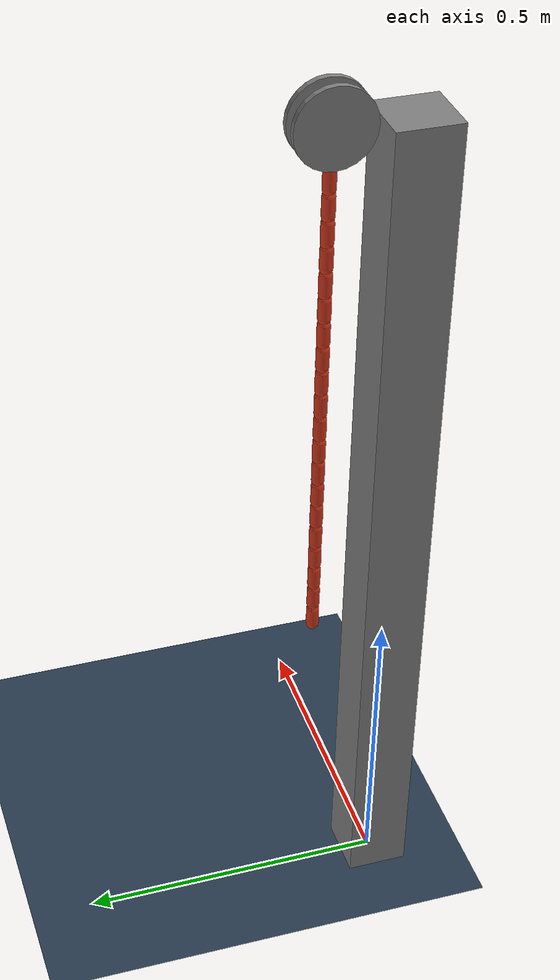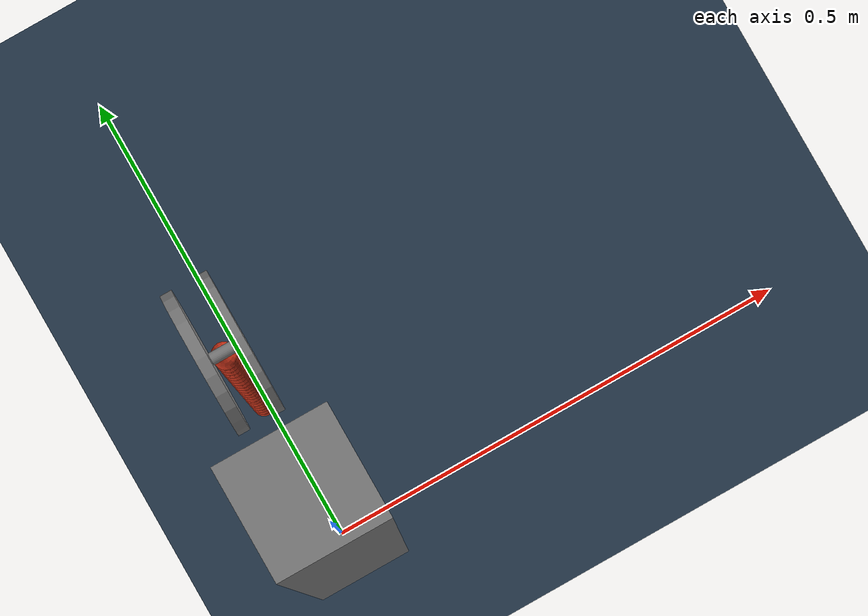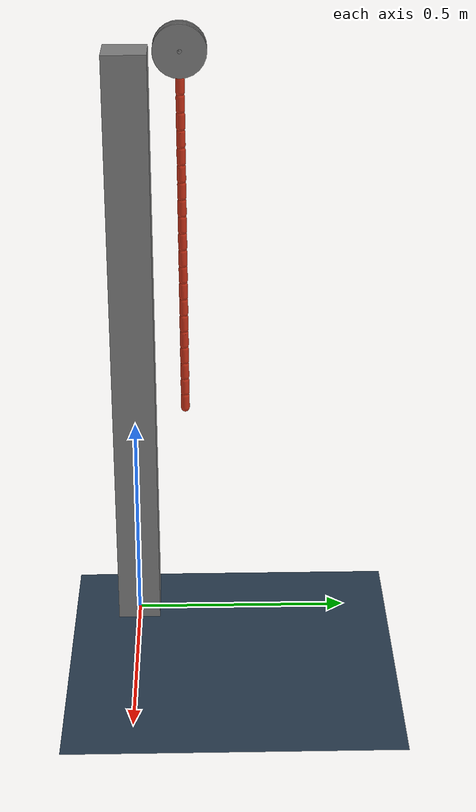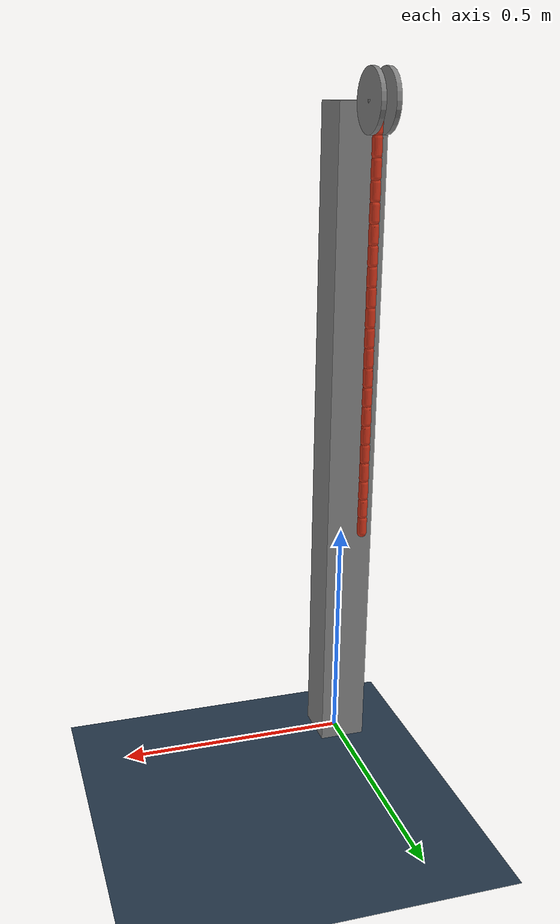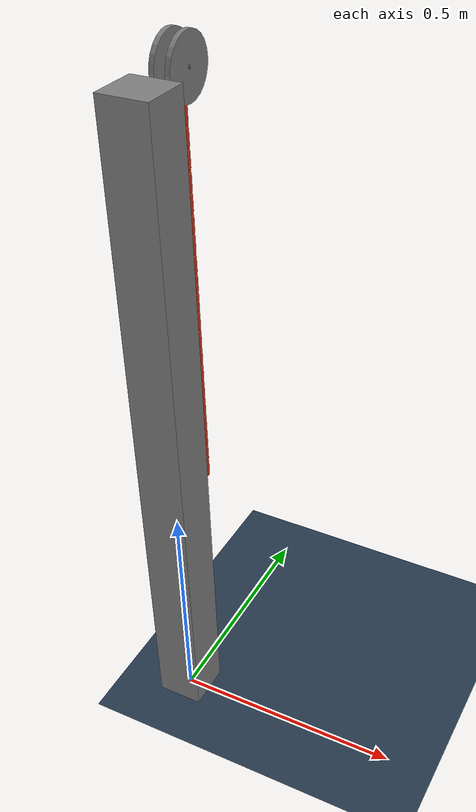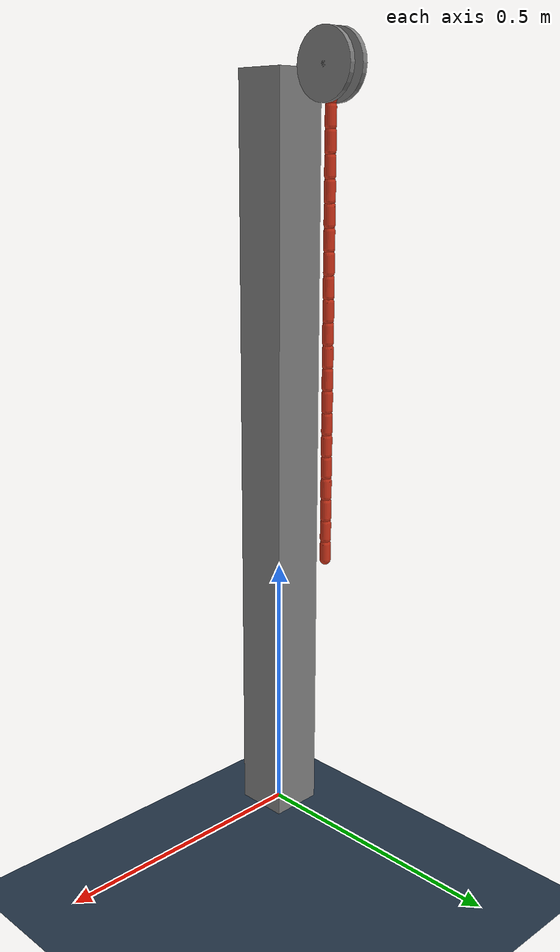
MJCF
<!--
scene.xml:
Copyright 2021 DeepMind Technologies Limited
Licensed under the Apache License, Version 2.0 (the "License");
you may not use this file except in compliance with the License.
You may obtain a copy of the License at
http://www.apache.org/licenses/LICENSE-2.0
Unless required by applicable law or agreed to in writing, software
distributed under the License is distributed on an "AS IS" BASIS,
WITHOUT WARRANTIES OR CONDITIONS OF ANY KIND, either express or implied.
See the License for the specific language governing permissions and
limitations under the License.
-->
<?xml version="1.0" encoding="UTF-8"?>

<mujoco model="d2w_cables">
    <include file="scene.xml"/>

    <option timestep="0.001" jacobian="dense"/>
    <option>
        <flag sensornoise="enable" />
    </option>

    <size nconmax="300" njmax="10000" nstack="500000"/>

    <asset>
        <texture type="skybox" builtin="gradient" rgb1=".3 .5 .7" rgb2="0 0 0" width="512" height="512"/>
        <texture name="body" type="cube" builtin="flat" mark="cross" width="127" height="1278"
                rgb1="0.8 0.6 0.4" rgb2="0.8 0.6 0.4" markrgb="1 1 1" random="0.01"/>
        <material name="body" texture="body" texuniform="true" rgba="0.8 0.6 .4 1"/>
        <texture name="grid" type="2d" builtin="checker" width="512" height="512" rgb1=".1 .2 .3" rgb2=".2 .3 .4"/>
        <material name="grid" texture="grid" texrepeat="1 1" texuniform="true" reflectance=".2"/>
    </asset>

    <default>
        <motor ctrlrange="-1 1" ctrllimited="true"/>
        <default class="body">
        <geom type="capsule" condim="1" friction=".7" solimp=".9 .99 .003" solref=".015 1" material="body"/>
        <joint type="hinge" damping=".2" stiffness="1" armature=".01" limited="true" solimplimit="0 .99 .01"/>
        <default class="big_joint">
            <joint damping="5" stiffness="10"/>
            <default class="big_stiff_joint">
            <joint stiffness="20"/>
            </default>
        </default>
        </default>
    </default>

    <visual>
        <map force="0.1" zfar="30"/>
        <rgba haze="0.15 0.25 0.4 1"/>
        <quality shadowsize="4096"/>
        <global offwidth="800" offheight="800"/>
    </visual>

    <worldbody>
        <!-- Last code Full body -->
        <body name="mastil_0"  euler="0 90 0" pos="0 0 0.7">
            <geom type="box" mass="1000" pos="0 0 0" size="0.7 0.05 0.05"/>
            <body name="b_winch_0" pos="-0.7 0.12 0">
                <joint type="hinge" axis="0 0 1" name="winch_0" range="-1.5708 1.5708"/>
                <geom type="cylinder" solimp=".9 .99 .003" priority="2" condim="6" fromto="0 0 -0.01 0 0 0.02" size="0.005"/>
                <geom type="cylinder" euler= "90 90 0" priority="2" condim="6" fromto="0 0 -0.01 0 0 -0.02" size="0.06"/>
                <geom type="cylinder" euler= "90 90 0" priority="2" condim="6" fromto="0 0 0.01 0 0 0.02" size="0.06"/>
                    <body name="B9" pos="0.04 0 0">
                        <inertial pos="0 0 0" quat="0.707107 0 0.707107 0" mass="0.0125664" diaginertia="1.98968e-06 1.98968e-06 6.28319e-07" />
                        <joint name="J0_9" pos="-0.02 0 0" axis="0 1 0" group="3" damping="0.005" />
                        <joint name="J1_9" pos="-0.02 0 0" axis="0 0 1" group="3" damping="0.005" />
                        <geom name="G9" size="0.01 0.015" quat="0.707107 0 0.707107 0" type="capsule" rgba="0.8 0.2 0.1 1" />
                        <body name="B8" pos="0.04 0 0">
                            <inertial pos="0 0 0" quat="0.707107 0 0.707107 0" mass="0.0125664" diaginertia="1.98968e-06 1.98968e-06 6.28319e-07" />
                            <joint name="J0_8" pos="-0.02 0 0" axis="0 1 0" group="3" damping="0.005" />
                            <joint name="J1_8" pos="-0.02 0 0" axis="0 0 1" group="3" damping="0.005" />
                            <geom name="G8" size="0.01 0.015" quat="0.707107 0 0.707107 0" type="capsule" rgba="0.8 0.2 0.1 1" />
                            <body name="B7" pos="0.04 0 0">
                                <inertial pos="0 0 0" quat="0.707107 0 0.707107 0" mass="0.0125664" diaginertia="1.98968e-06 1.98968e-06 6.28319e-07" />
                                <joint name="J0_7" pos="-0.02 0 0" axis="0 1 0" group="3" damping="0.005" />
                                <joint name="J1_7" pos="-0.02 0 0" axis="0 0 1" group="3" damping="0.005" />
                                <geom name="G7" size="0.01 0.015" quat="0.707107 0 0.707107 0" type="capsule" rgba="0.8 0.2 0.1 1" />
                                <body name="B6" pos="0.04 0 0">
                                    <inertial pos="0 0 0" quat="0.707107 0 0.707107 0" mass="0.0125664" diaginertia="1.98968e-06 1.98968e-06 6.28319e-07" />
                                    <joint name="J0_6" pos="-0.02 0 0" axis="0 1 0" group="3" damping="0.005" />
                                    <joint name="J1_6" pos="-0.02 0 0" axis="0 0 1" group="3" damping="0.005" />
                                    <geom name="G6" size="0.01 0.015" quat="0.707107 0 0.707107 0" type="capsule" rgba="0.8 0.2 0.1 1" />
                                    <body name="B5" pos="0.04 0 0">
                                        <inertial pos="0 0 0" quat="0.707107 0 0.707107 0" mass="0.0125664" diaginertia="1.98968e-06 1.98968e-06 6.28319e-07" />
                                        <joint name="J0_5" pos="-0.02 0 0" axis="0 1 0" group="3" damping="0.005" />
                                        <joint name="J1_5" pos="-0.02 0 0" axis="0 0 1" group="3" damping="0.005" />
                                        <geom name="G5" size="0.01 0.015" quat="0.707107 0 0.707107 0" type="capsule" rgba="0.8 0.2 0.1 1" />
                                        <body name="B4" pos="0.04 0 0">
                                            <inertial pos="0 0 0" quat="0.707107 0 0.707107 0" mass="0.0125664" diaginertia="1.98968e-06 1.98968e-06 6.28319e-07" />
                                            <joint name="J0_4" pos="-0.02 0 0" axis="0 1 0" group="3" damping="0.005" />
                                            <joint name="J1_4" pos="-0.02 0 0" axis="0 0 1" group="3" damping="0.005" />
                                            <geom name="G4" size="0.01 0.015" quat="0.707107 0 0.707107 0" type="capsule" rgba="0.8 0.2 0.1 1" />
                                            <body name="B3" pos="0.04 0 0">
                                                <inertial pos="0 0 0" quat="0.707107 0 0.707107 0" mass="0.0125664" diaginertia="1.98968e-06 1.98968e-06 6.28319e-07" />
                                                <joint name="J0_3" pos="-0.02 0 0" axis="0 1 0" group="3" damping="0.005" />
                                                <joint name="J1_3" pos="-0.02 0 0" axis="0 0 1" group="3" damping="0.005" />
                                                <geom name="G3" size="0.01 0.015" quat="0.707107 0 0.707107 0" type="capsule" rgba="0.8 0.2 0.1 1" />
                                                <body name="B2" pos="0.04 0 0">
                                                    <inertial pos="0 0 0" quat="0.707107 0 0.707107 0" mass="0.0125664" diaginertia="1.98968e-06 1.98968e-06 6.28319e-07" />
                                                    <joint name="J0_2" pos="-0.02 0 0" axis="0 1 0" group="3" damping="0.005" />
                                                    <joint name="J1_2" pos="-0.02 0 0" axis="0 0 1" group="3" damping="0.005" />
                                                    <geom name="G2" size="0.01 0.015" quat="0.707107 0 0.707107 0" type="capsule" rgba="0.8 0.2 0.1 1" />
                                                    <body name="B1" pos="0.04 0 0">
                                                        <inertial pos="0 0 0" quat="0.707107 0 0.707107 0" mass="0.0125664" diaginertia="1.98968e-06 1.98968e-06 6.28319e-07" />
                                                        <joint name="J0_1" pos="-0.02 0 0" axis="0 1 0" group="3" damping="0.005" />
                                                        <joint name="J1_1" pos="-0.02 0 0" axis="0 0 1" group="3" damping="0.005" />
                                                        <geom name="G1" size="0.01 0.015" quat="0.707107 0 0.707107 0" type="capsule" rgba="0.8 0.2 0.1 1" />
                                                        <body name="B0" pos="0.04 0 0">
                                                            <inertial pos="0 0 0" quat="0.707107 0 0.707107 0" mass="0.0125664" diaginertia="1.98968e-06 1.98968e-06 6.28319e-07" />
                                                            <joint name="J0_0" pos="-0.02 0 0" axis="0 1 0" group="3" damping="0.005" />
                                                            <joint name="J1_0" pos="-0.02 0 0" axis="0 0 1" group="3" damping="0.005" />
                                                            <geom name="G0" size="0.01 0.015" quat="0.707107 0 0.707107 0" type="capsule" rgba="0.8 0.2 0.1 1" />
                                                            <body name="B10" pos="0.04 0 0">
                                                                <inertial pos="0 0 0" quat="0.707107 0 0.707107 0" mass="0.0125664" diaginertia="1.98968e-06 1.98968e-06 6.28319e-07" />
                                                                <geom name="G10" size="0.01 0.015" quat="0.707107 0 0.707107 0" type="capsule" rgba="0.8 0.2 0.1 1" />
                                                                <body name="B11" pos="0.04 0 0">
                                                                    <inertial pos="0 0 0" quat="0.707107 0 0.707107 0" mass="0.0125664" diaginertia="1.98968e-06 1.98968e-06 6.28319e-07" />
                                                                    <joint name="J0_11" pos="-0.02 0 0" axis="0 1 0" group="3" damping="0.005" />
                                                                    <joint name="J1_11" pos="-0.02 0 0" axis="0 0 1" group="3" damping="0.005" />
                                                                    <geom name="G11" size="0.01 0.015" quat="0.707107 0 0.707107 0" type="capsule" rgba="0.8 0.2 0.1 1" />
                                                                    <body name="B12" pos="0.04 0 0">
                                                                        <inertial pos="0 0 0" quat="0.707107 0 0.707107 0" mass="0.0125664" diaginertia="1.98968e-06 1.98968e-06 6.28319e-07" />
                                                                        <joint name="J0_12" pos="-0.02 0 0" axis="0 1 0" group="3" damping="0.005" />
                                                                        <joint name="J1_12" pos="-0.02 0 0" axis="0 0 1" group="3" damping="0.005" />
                                                                        <geom name="G12" size="0.01 0.015" quat="0.707107 0 0.707107 0" type="capsule" rgba="0.8 0.2 0.1 1" />
                                                                        <body name="B13" pos="0.04 0 0">
                                                                            <inertial pos="0 0 0" quat="0.707107 0 0.707107 0" mass="0.0125664" diaginertia="1.98968e-06 1.98968e-06 6.28319e-07" />
                                                                            <joint name="J0_13" pos="-0.02 0 0" axis="0 1 0" group="3" damping="0.005" />
                                                                            <joint name="J1_13" pos="-0.02 0 0" axis="0 0 1" group="3" damping="0.005" />
                                                                            <geom name="G13" size="0.01 0.015" quat="0.707107 0 0.707107 0" type="capsule" rgba="0.8 0.2 0.1 1" />
                                                                            <body name="B14" pos="0.04 0 0">
                                                                                <inertial pos="0 0 0" quat="0.707107 0 0.707107 0" mass="0.0125664" diaginertia="1.98968e-06 1.98968e-06 6.28319e-07" />
                                                                                <joint name="J0_14" pos="-0.02 0 0" axis="0 1 0" group="3" damping="0.005" />
                                                                                <joint name="J1_14" pos="-0.02 0 0" axis="0 0 1" group="3" damping="0.005" />
                                                                                <geom name="G14" size="0.01 0.015" quat="0.707107 0 0.707107 0" type="capsule" rgba="0.8 0.2 0.1 1" />
                                                                                <body name="B15" pos="0.04 0 0">
                                                                                    <inertial pos="0 0 0" quat="0.707107 0 0.707107 0" mass="0.0125664" diaginertia="1.98968e-06 1.98968e-06 6.28319e-07" />
                                                                                    <joint name="J0_15" pos="-0.02 0 0" axis="0 1 0" group="3" damping="0.005" />
                                                                                    <joint name="J1_15" pos="-0.02 0 0" axis="0 0 1" group="3" damping="0.005" />
                                                                                    <geom name="G15" size="0.01 0.015" quat="0.707107 0 0.707107 0" type="capsule" rgba="0.8 0.2 0.1 1" />
                                                                                    <body name="B16" pos="0.04 0 0">
                                                                                        <inertial pos="0 0 0" quat="0.707107 0 0.707107 0" mass="0.0125664" diaginertia="1.98968e-06 1.98968e-06 6.28319e-07" />
                                                                                        <joint name="J0_16" pos="-0.02 0 0" axis="0 1 0" group="3" damping="0.005" />
                                                                                        <joint name="J1_16" pos="-0.02 0 0" axis="0 0 1" group="3" damping="0.005" />
                                                                                        <geom name="G16" size="0.01 0.015" quat="0.707107 0 0.707107 0" type="capsule" rgba="0.8 0.2 0.1 1" />
                                                                                        <body name="B17" pos="0.04 0 0">
                                                                                            <inertial pos="0 0 0" quat="0.707107 0 0.707107 0" mass="0.0125664" diaginertia="1.98968e-06 1.98968e-06 6.28319e-07" />
                                                                                            <joint name="J0_17" pos="-0.02 0 0" axis="0 1 0" group="3" damping="0.005" />
                                                                                            <joint name="J1_17" pos="-0.02 0 0" axis="0 0 1" group="3" damping="0.005" />
                                                                                            <geom name="G17" size="0.01 0.015" quat="0.707107 0 0.707107 0" type="capsule" rgba="0.8 0.2 0.1 1" />
                                                                                            <body name="B18" pos="0.04 0 0">
                                                                                                <inertial pos="0 0 0" quat="0.707107 0 0.707107 0" mass="0.0125664" diaginertia="1.98968e-06 1.98968e-06 6.28319e-07" />
                                                                                                <joint name="J0_18" pos="-0.02 0 0" axis="0 1 0" group="3" damping="0.005" />
                                                                                                <joint name="J1_18" pos="-0.02 0 0" axis="0 0 1" group="3" damping="0.005" />
                                                                                                <geom name="G18" size="0.01 0.015" quat="0.707107 0 0.707107 0" type="capsule" rgba="0.8 0.2 0.1 1" />
                                                                                                <body name="B19" pos="0.04 0 0">
                                                                                                    <inertial pos="0 0 0" quat="0.707107 0 0.707107 0" mass="0.0125664" diaginertia="1.98968e-06 1.98968e-06 6.28319e-07" />
                                                                                                    <joint name="J0_19" pos="-0.02 0 0" axis="0 1 0" group="3" damping="0.005" />
                                                                                                    <joint name="J1_19" pos="-0.02 0 0" axis="0 0 1" group="3" damping="0.005" />
                                                                                                    <geom name="G19" size="0.01 0.015" quat="0.707107 0 0.707107 0" type="capsule" rgba="0.8 0.2 0.1 1" />
                                                                                                    <body name="B20" pos="0.04 0 0">
                                                                                                        <inertial pos="0 0 0" quat="0.707107 0 0.707107 0" mass="0.0125664" diaginertia="1.98968e-06 1.98968e-06 6.28319e-07" />
                                                                                                        <joint name="J0_20" pos="-0.02 0 0" axis="0 1 0" group="3" damping="0.005" />
                                                                                                        <joint name="J1_20" pos="-0.02 0 0" axis="0 0 1" group="3" damping="0.005" />
                                                                                                        <geom name="G20" size="0.01 0.015" quat="0.707107 0 0.707107 0" type="capsule" rgba="0.8 0.2 0.1 1" />
                                                                                                    </body>
                                                                                                </body>
                                                                                            </body>
                                                                                        </body>
                                                                                    </body>
                                                                                </body>
                                                                            </body>
                                                                        </body>
                                                                    </body>
                                                                </body>
                                                            </body>
                                                        </body>
                                                    </body>
                                                </body>
                                            </body>
                                        </body>
                                    </body>
                                </body>
                            </body>
                        </body>
                    </body>
            </body>
        </body>
    </worldbody>

    <actuator>
        <motor name="winch_0"           joint="winch_0" gear="1000" ctrllimited="true" ctrlrange="-190 190"/>
        <position name="winch_0_position" joint="winch_0" kp="100" ctrlrange="0 400"/>
        <velocity name="winch_0_velocity" joint="winch_0" kv="0"/>
    </actuator>

    <sensor>
        <jointpos joint="winch_0" noise="0"/>
        <jointvel joint="winch_0" noise="0"/>

    </sensor>

	<equality>

        <weld body1="mastil_0" body2="world" active="true" ></weld>

	</equality>

</mujoco>

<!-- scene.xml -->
<mujoco>
  <compiler meshdir="asset" texturedir="asset"/>
  <statistic extent="1.5" meansize=".05"/>

  <option timestep="0.005" jacobian="sparse"/>

  <visual>
    <rgba haze="0.15 0.25 0.35 1"/>
    <quality shadowsize="4096"/>
    <map stiffness="700" shadowscale="0.5" fogstart="10" fogend="15" zfar="40" haze="0.3"/>
  </visual>

  <asset>
    <texture type="skybox" builtin="gradient" rgb1="0.3 0.5 0.7" rgb2="0 0 0" width="512" height="512"/>
    <texture name="texplane" type="2d" builtin="checker" rgb1=".2 .3 .4" rgb2=".1 0.15 0.2"
      width="512" height="512" mark="cross" markrgb=".8 .8 .8"/>
    <texture name="texcarpet" type="2d" file="carpet.png"/>
    <texture name="texsponge" type="2d" file="sponge.png"/>
    <texture name="texmarble" type="cube" file="marble.png"/>

    <material name="matplane" reflectance="0.3" texture="texplane" texrepeat="1 1" texuniform="true"/>
    <material name="matcarpet" texture="texcarpet"/>
    <material name="matsponge" texture="texsponge" specular="0.3"/>
    <material name="matmarble" texture="texmarble" rgba=".7 .7 .7 1"/>
  </asset>

  <worldbody>
    <light directional="true" diffuse=".4 .4 .4" specular="0.1 0.1 0.1" pos="0 0 5.0" dir="0 0 -1" castshadow="false"/>
    <light directional="true" diffuse=".6 .6 .6" specular="0.2 0.2 0.2" pos="0 0 4" dir="0 0 -1"/>

    <geom name="ground" type="plane" size="0 0 1" pos="0 0 0" quat="1 0 0 0" material="matplane" condim="1"/>
  </worldbody>
</mujoco>
